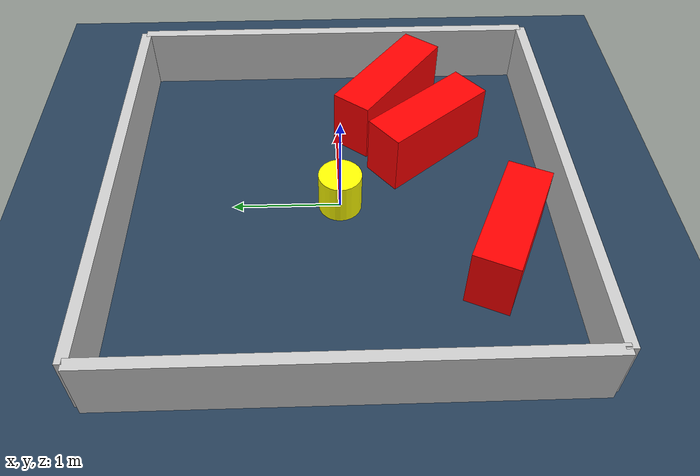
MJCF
<?xml version="1.0" ?>
<mujoco model="generated_environment">
  <option timestep="0.01" integrator="RK4" cone="elliptic"/>
  <default>
    <geom density="1"/>
  </default>
  <asset>
    <texture builtin="gradient" height="3072" rgb1="0.3 0.5 0.7" rgb2="0 0 0" type="skybox" width="512"/>
    <texture builtin="checker" height="300" mark="edge" markrgb="0.8 0.8 0.8" name="groundplane" rgb1="0.2 0.3 0.4" rgb2="0.1 0.2 0.3" type="2d" width="300"/>
    <material name="groundplane" reflectance="0.2" texrepeat="5 5" texture="groundplane" texuniform="true"/>
    <material name="robot" rgba="0.0 1.0 0.0 1"/>
  </asset>
  <worldbody>
    <light dir="0 0 -1" directional="true" pos="0 0 1.5"/>
    <geom condim="4" friction="1.0 0.005 0.001" material="groundplane" name="floor" size="0 0 0.05" type="plane"/>
    <body name="walls">
      <geom name="wall_1" condim="4" pos="-2.0 0.0 0.3" rgba="0.800000011920929 0.800000011920929 0.800000011920929 1.0" size="0.05 2.0 0.3" type="box"/>
      <geom name="wall_2" condim="4" pos="2.0 0.0 0.3" rgba="0.800000011920929 0.800000011920929 0.800000011920929 1.0" size="0.05 2.0 0.3" type="box"/>
      <geom name="wall_3" condim="4" pos="0.0 -2.0 0.3" rgba="0.800000011920929 0.800000011920929 0.800000011920929 1.0" size="2.0 0.05 0.3" type="box"/>
      <geom name="wall_4" condim="4" pos="0.0 2.0 0.3" rgba="0.800000011920929 0.800000011920929 0.800000011920929 1.0" size="2.0 0.05 0.3" type="box"/>
    </body>
    <body name="robot">
      <joint name="joint_x" type="slide" pos="0 0 0" axis="1 0 0"/>
      <joint name="joint_y" type="slide" pos="0 0 0" axis="0 1 0"/>
      <geom name="robot" type="sphere" pos="0.3 0.0 0.2" size="0.05" mass="5." friction="1.0 0.005 0.0001" condim="4" rgba="0.5 0.5 0.5 1.0"/>
      <site name="sensor_ball"/>
    </body>
    <body name="obstacle_movable_1">
      <geom name="obstacle_movable_1" condim="4" pos="0.0 0.0 0.2" euler="0 0 0.0" friction="1.0 0.005 0.001" rgba="1.0 1.0 0.0 1.0" size="0.2 0.2 0.0" type="cylinder" mass="0.1"/>
      <joint type="free"/>
    </body>
    <body name="obstacle_2_static">
      <geom name="obstacle_2_static" condim="4" pos="1.282763409258663 -0.5217749028813392 0.3" euler="0 0 321.9822246589866" friction="1.0 0.005 0.001" rgba="1 0 0 1" size="0.6439401886350224 0.2 0.3" type="box"/>
    </body>
    <body name="obstacle_3_static">
      <geom name="obstacle_3_static" condim="4" pos="0.7096184833175505 -0.8667967479991963 0.3" euler="0 0 128.5850668592546" friction="1.0 0.005 0.001" rgba="1 0 0 1" size="0.5865874357603358 0.2 0.3" type="box"/>
    </body>
    <body name="obstacle_4_static">
      <geom name="obstacle_4_static" condim="4" pos="-0.6827981332628551 -1.4232233388900761 0.3" euler="0 0 335.0599418839776" friction="1.0 0.005 0.001" rgba="1 0 0 1" size="0.5810542461721238 0.2 0.3" type="box"/>
    </body>
  </worldbody>
  <actuator>
    <motor name="actuator_x" joint="joint_x" gear="1" ctrlrange="-1 1"/>
    <motor name="actuator_y" joint="joint_y" gear="1" ctrlrange="-1 1"/>
  </actuator>
</mujoco>
